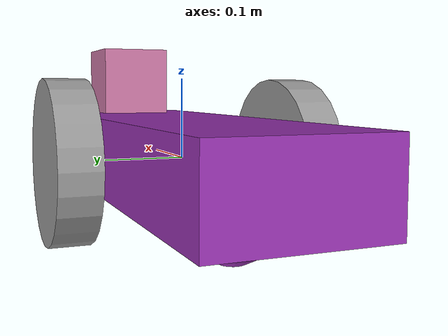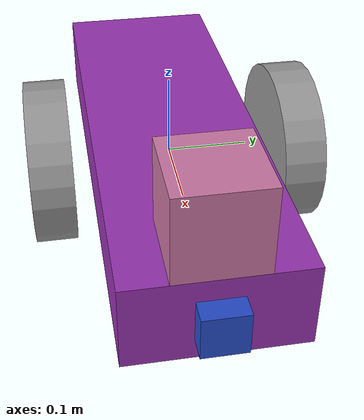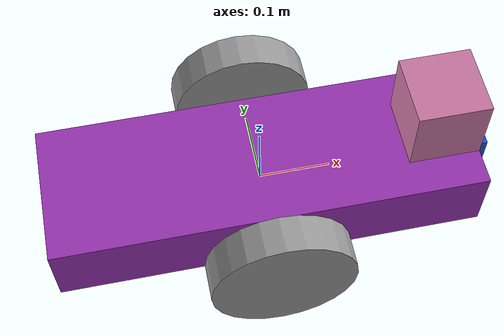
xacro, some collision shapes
<?xml version='1.0'?>

<robot name="my_robot" xmlns:xacro="http://www.ros.org/wiki/xacro">
    <xacro:include filename="$(find my_robot)/urdf/my_robot.gazebo" />
    <link name="robot_footprint"></link>

    <joint name="robot_footprint_joint" type="fixed">
        <origin xyz="0 0 0" rpy="0 0 0" />
        <parent link="robot_footprint"/>
        <child link="chassis" />
    </joint>

    <link name='chassis'>
        <pose>0 0 0.1 0 0 0</pose>

        <inertial>
            <mass value="15.0"/>
            <origin xyz="0.0 0 0" rpy=" 0 0 0"/>
            <inertia
                ixx="0.1" ixy="0" ixz="0"
                iyy="0.1" iyz="0"
                izz="0.1"
            />
        </inertial>

        <collision name='collision'>
            <origin xyz="0 0 0" rpy=" 0 0 0"/>
            <geometry>
                <box size=".6 .2 .1"/>
            </geometry>
        </collision>

        <visual name='chassis_visual'>
            <origin xyz="0 0 0" rpy=" 0 0 0"/>
            <geometry>
                <box size=".6 .2 .1"/>
            </geometry>
        </visual>

        <collision name='back_caster_collision'>
            <origin xyz="-0.15 0 -0.05" rpy=" 0 0 0"/>
            <geometry>
                <sphere radius="0.0499"/>
            </geometry>
        </collision>

        <visual name='back_caster_visual'>
            <origin xyz="-0.15 0 -0.05" rpy=" 0 0 0"/>
            <geometry>
                <sphere radius="0.05"/>
            </geometry>
        </visual>

        <collision name='front_caster_collision'>
            <origin xyz="0.15 0 -0.05" rpy=" 0 0 0"/>
            <geometry>
                <sphere radius="0.0499"/>
            </geometry>
        </collision>

        <visual name='front_caster_visual'>
            <origin xyz="0.15 0 -0.05" rpy=" 0 0 0"/>
            <geometry>
                <sphere radius="0.05"/>
            </geometry>
        </visual>
    </link>

    <link name="left_wheel">
        <visual>
            <origin xyz="0 0 0" rpy="0 1.5707 1.5707"/>
            <geometry>
                <cylinder radius="0.1" length="0.05"/>
            </geometry>
        </visual>
        <collision>
            <origin xyz="0 0 0" rpy="0 1.5707 1.5707"/>
            <geometry>
                <cylinder radius="0.1" length="0.05"/>
            </geometry>
        </collision>
        <inertial>
            <mass value="5"/>
            <origin xyz="0 0 0" rpy="0 1.5707 1.5707"/>
            <inertia
                ixx="0.1" ixy="0" ixz="0"
                iyy="0.1" iyz="0"
                izz="0.1"
            />
        </inertial>
    </link>

    <link name="right_wheel">
        <visual>
            <origin xyz="0 0 0" rpy="0 1.5707 1.5707"/>
            <geometry>
                <cylinder radius="0.1" length="0.05"/>
            </geometry>
        </visual>
        <collision>
            <origin xyz="0 0 0" rpy="0 1.5707 1.5707"/>
            <geometry>
                <cylinder radius="0.1" length="0.05"/>
            </geometry>
        </collision>
        <inertial>
            <mass value="5"/>
            <origin xyz="0 0 0" rpy="0 1.5707 1.5707"/>
            <inertia
                ixx="0.1" ixy="0" ixz="0"
                iyy="0.1" iyz="0"
                izz="0.1"
            />
        </inertial>
    </link>

    <joint type="continuous" name="left_wheel_hinge">
        <origin xyz="0 0.15 0" rpy="0 0 0"/>
        <child link="left_wheel"/>
        <parent link="chassis"/>
        <axis xyz="0 1 0" rpy="0 0 0"/>
        <limit effort="10000" velocity="1000"/>
        <dynamics damping="1.0" friction="1.0"/>
    </joint>

    <joint type="continuous" name="right_wheel_hinge">
        <origin xyz="0 -0.15 0" rpy="0 0 0"/>
        <child link="right_wheel"/>
        <parent link="chassis"/>
        <axis xyz="0 1 0" rpy="0 0 0"/>
        <limit effort="10000" velocity="1000"/>
        <dynamics damping="1.0" friction="1.0"/>
    </joint>

	<link name="camera">
		<visual>
            <origin xyz="0 0 0" rpy="0 0 0"/>
            <geometry>
                <box size="0.05 0.05 0.05"/>
            </geometry>
		</visual>
        <collision>
            <origin xyz="0 0 0" rpy="0 0 0"/>
            <geometry>
                <box size="0.05 0.05 0.05"/>
            </geometry>
        </collision>
        <inertial>
            <mass value="0.1"/>
            <origin xyz="0.05 0.05 0.05" rpy="0 0 0"/>
            <inertia
                ixx="1e-6" ixy="0" ixz="0"
                iyy="1e-6" iyz="0"
                izz="1e-6"
            />
        </inertial>
	</link>

    <joint type="fixed" name="camera_joint">
        <origin xyz="0.3 0 0" rpy="0 0 0"/>
        <child link="camera"/>
        <parent link="chassis"/>
        <axis xyz="0 1 0" rpy="0 0 0"/>
    </joint>

    <joint name="camera_optical_joint" type="fixed">
        <origin xyz="0 0 0" rpy="-1.5707 0 -1.5707"/>
        <parent link="camera"/>
        <child link="camera_link_optical"/>
    </joint>

    <link name="camera_link_optical">
    </link>

    <link name="hokuyo">
        <visual>
            <origin xyz="0 0 0" rpy="0 0 0"/>
            <geometry>
                <mesh filename="package://my_robot/meshes/hokuyo.dae"/>
            </geometry>
        </visual>
        <collision>
            <origin xyz="0 0 0" rpy="0 0 0"/>
            <geometry>
                <box size="0.1 0.1 0.1"/>
            </geometry>
        </collision>
        <inertial>
            <origin xyz="0 0 0" rpy="0 0 0"/>
            <mass value="1e-5"/>
            <inertia
                ixx="1e-6" ixy="0" ixz="0"
                iyy="1e-6" iyz="0"
                izz="1e-6"
            />
        </inertial>
    </link>

    <joint type="fixed" name="hokuyo_joint">
        <origin xyz="0.25 0 0.1" rpy="0 0 0"/>
        <child link="hokuyo"/>
        <parent link="chassis"/>
        <axis xyz="0 1 0" rpy="0 0 0"/>
    </joint>

	<gazebo reference="left_wheel">
		<material>Gazebo/Gray</material>
	</gazebo>

	<gazebo reference="right_wheel">
		<material>Gazebo/Gray</material>
	</gazebo>

	<gazebo reference="chassis">
		<material>Gazebo/Purple</material>
	</gazebo>

	<gazebo reference="camera">
		<material>Gazebo/Blue</material>
	</gazebo>
</robot>
